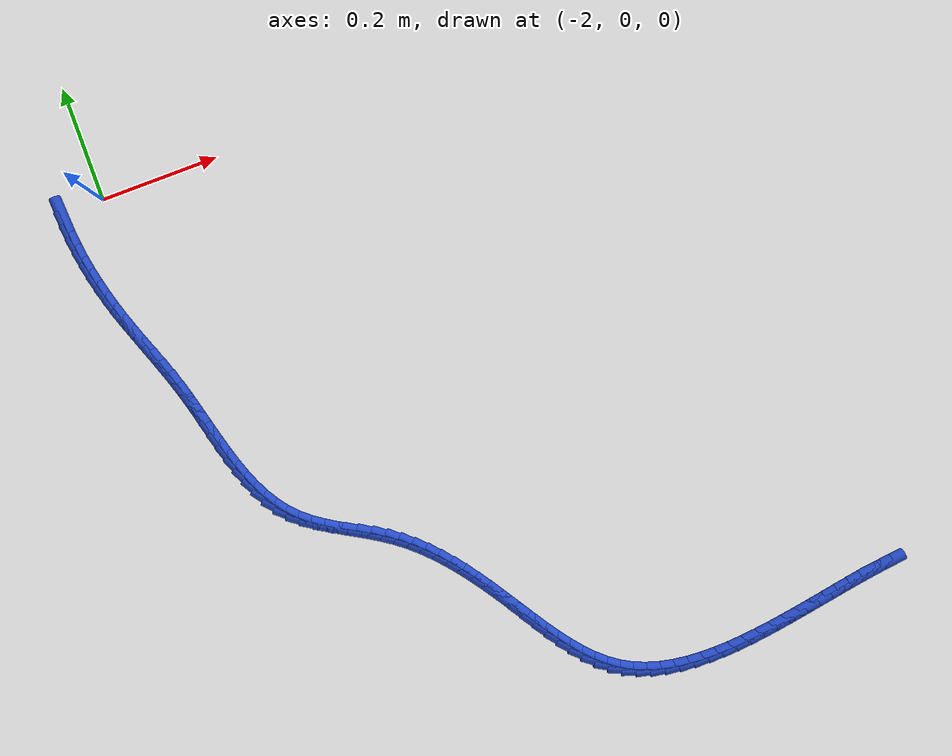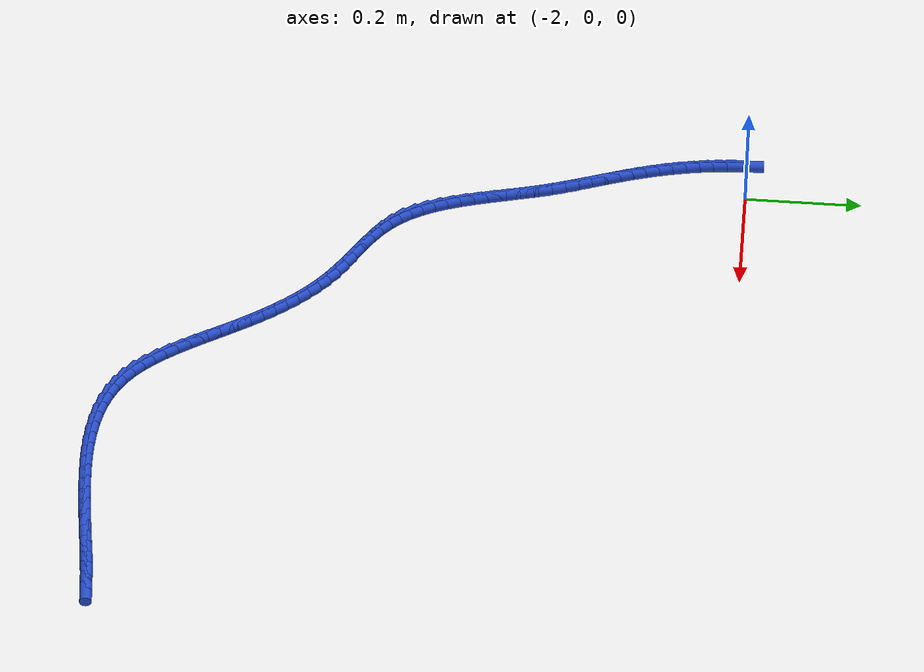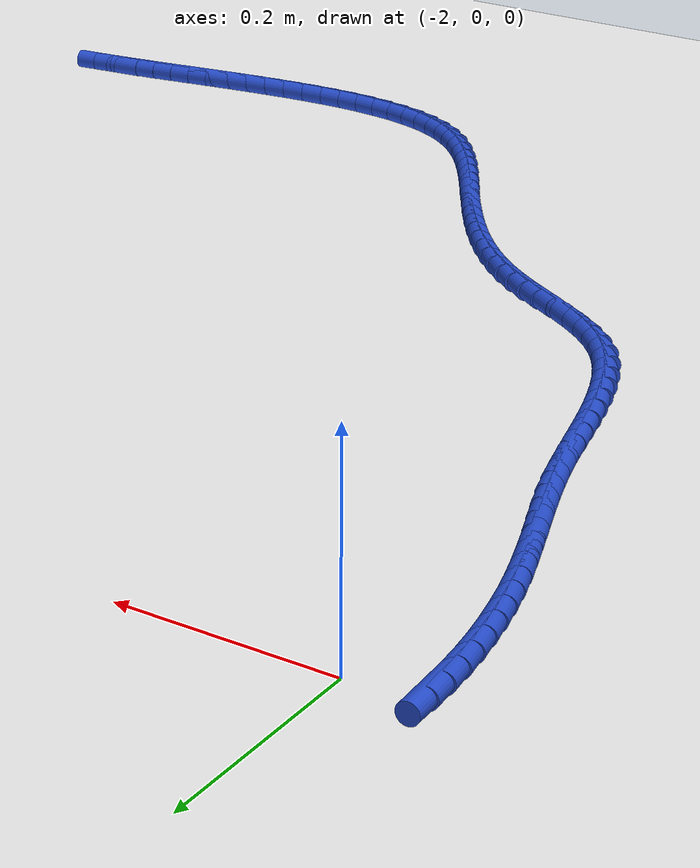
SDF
<sdf version="1.6">
 <world name="default">
  <model name="ground_plane">
   <static>1</static>
   <link name="link">
    <collision name="collision">
     <geometry><plane><normal>0 0 1</normal><size>100 100</size></plane></geometry>
     <surface><friction><ode><mu>100</mu><mu2>50</mu2></ode></friction></surface>
    </collision>
    <visual name="visual">
     <cast_shadows>0</cast_shadows>
     <geometry><plane><normal>0 0 1</normal><size>100 100</size></plane></geometry>
     <material>
      <script><uri>file://media/materials/scripts/gazebo.material</uri><name>Gazebo/WhiteGlow</name></script>
     </material>
    </visual>
   </link>
  </model>
  <model name="line">
   <link name="link_146">
    <pose>-2.069911727514506 -0.011336352684230647 0.01 0 1.57 -1.5201740259745384</pose>
    <collision name="collision">
     <geometry><cylinder><radius>0.01</radius><length>0.08</length></cylinder></geometry>
    </collision>
    <visual name="visual">
     <material>
      <script><name>Gazebo/Blue</name><uri>file://media/materials/scripts/gazebo.material</uri></script>
     </material>
     <geometry><cylinder><radius>0.01</radius><length>0.08</length></cylinder></geometry>
    </visual>
   </link>
   <link name="link_147">
    <pose>-2.0687091675689917 -0.0350715942052536 0.01 0 1.57 -1.476931890890407</pose>
    <collision name="collision">
     <geometry><cylinder><radius>0.01</radius><length>0.08</length></cylinder></geometry>
    </collision>
    <visual name="visual">
     <material>
      <script><name>Gazebo/Blue</name><uri>file://media/materials/scripts/gazebo.material</uri></script>
     </material>
     <geometry><cylinder><radius>0.01</radius><length>0.08</length></cylinder></geometry>
    </visual>
   </link>
   <link name="link_148">
    <pose>-2.066475803037041 -0.058795186758817175 0.01 0 1.57 -1.4367268029445421</pose>
    <collision name="collision">
     <geometry><cylinder><radius>0.01</radius><length>0.08</length></cylinder></geometry>
    </collision>
    <visual name="visual">
     <material>
      <script><name>Gazebo/Blue</name><uri>file://media/materials/scripts/gazebo.material</uri></script>
     </material>
     <geometry><cylinder><radius>0.01</radius><length>0.08</length></cylinder></geometry>
    </visual>
   </link>
   <link name="link_149">
    <pose>-2.0632869603171833 -0.08243750007158315 0.01 0 1.57 -1.399285994150578</pose>
    <collision name="collision">
     <geometry><cylinder><radius>0.01</radius><length>0.08</length></cylinder></geometry>
    </collision>
    <visual name="visual">
     <material>
      <script><name>Gazebo/Blue</name><uri>file://media/materials/scripts/gazebo.material</uri></script>
     </material>
     <geometry><cylinder><radius>0.01</radius><length>0.08</length></cylinder></geometry>
    </visual>
   </link>
   <link name="link_150">
    <pose>-2.0592179658079477 -0.10592890387021327 0.01 0 1.57 -1.3643417691982271</pose>
    <collision name="collision">
     <geometry><cylinder><radius>0.01</radius><length>0.08</length></cylinder></geometry>
    </collision>
    <visual name="visual">
     <material>
      <script><name>Gazebo/Blue</name><uri>file://media/materials/scripts/gazebo.material</uri></script>
     </material>
     <geometry><cylinder><radius>0.01</radius><length>0.08</length></cylinder></geometry>
    </visual>
   </link>
   <link name="link_151">
    <pose>-2.0543441459078635 -0.12919976788136928 0.01 0 1.57 -1.331635716571427</pose>
    <collision name="collision">
     <geometry><cylinder><radius>0.01</radius><length>0.08</length></cylinder></geometry>
    </collision>
    <visual name="visual">
     <material>
      <script><name>Gazebo/Blue</name><uri>file://media/materials/scripts/gazebo.material</uri></script>
     </material>
     <geometry><cylinder><radius>0.01</radius><length>0.08</length></cylinder></geometry>
    </visual>
   </link>
   <link name="link_152">
    <pose>-2.0487408270154592 -0.1521804618317122 0.01 0 1.57 -1.300920537341398</pose>
    <collision name="collision">
     <geometry><cylinder><radius>0.01</radius><length>0.08</length></cylinder></geometry>
    </collision>
    <visual name="visual">
     <material>
      <script><name>Gazebo/Blue</name><uri>file://media/materials/scripts/gazebo.material</uri></script>
     </material>
     <geometry><cylinder><radius>0.01</radius><length>0.08</length></cylinder></geometry>
    </visual>
   </link>
   <link name="link_153">
    <pose>-2.0424833355292633 -0.17480135544790526 0.01 0 1.57 -1.272190181612059</pose>
    <collision name="collision">
     <geometry><cylinder><radius>0.01</radius><length>0.08</length></cylinder></geometry>
    </collision>
    <visual name="visual">
     <material>
      <script><name>Gazebo/Blue</name><uri>file://media/materials/scripts/gazebo.material</uri></script>
     </material>
     <geometry><cylinder><radius>0.01</radius><length>0.08</length></cylinder></geometry>
    </visual>
   </link>
   <link name="link_154">
    <pose>-2.0356500062836993 -0.19700120746071667 0.01 0 1.57 -1.2484676305461881</pose>
    <collision name="collision">
     <geometry><cylinder><radius>0.01</radius><length>0.08</length></cylinder></geometry>
    </collision>
    <visual name="visual">
     <material>
      <script><name>Gazebo/Blue</name><uri>file://media/materials/scripts/gazebo.material</uri></script>
     </material>
     <geometry><cylinder><radius>0.01</radius><length>0.08</length></cylinder></geometry>
    </visual>
   </link>
   <link name="link_155">
    <pose>-2.0283594005211016 -0.2188309476801815 0.01 0 1.57 -1.2323095309053063</pose>
    <collision name="collision">
     <geometry><cylinder><radius>0.01</radius><length>0.08</length></cylinder></geometry>
    </collision>
    <visual name="visual">
     <material>
      <script><name>Gazebo/Blue</name><uri>file://media/materials/scripts/gazebo.material</uri></script>
     </material>
     <geometry><cylinder><radius>0.01</radius><length>0.08</length></cylinder></geometry>
    </visual>
   </link>
   <link name="link_156">
    <pose>-2.020758766001258 -0.24042149808540986 0.01 0 1.57 -1.2240645453291634</pose>
    <collision name="collision">
     <geometry><cylinder><radius>0.01</radius><length>0.08</length></cylinder></geometry>
    </collision>
    <visual name="visual">
     <material>
      <script><name>Gazebo/Blue</name><uri>file://media/materials/scripts/gazebo.material</uri></script>
     </material>
     <geometry><cylinder><radius>0.01</radius><length>0.08</length></cylinder></geometry>
    </visual>
   </link>
   <link name="link_157">
    <pose>-2.0129959679202556 -0.2619055023726623 0.01 0 1.57 -1.2238643599218886</pose>
    <collision name="collision">
     <geometry><cylinder><radius>0.01</radius><length>0.08</length></cylinder></geometry>
    </collision>
    <visual name="visual">
     <material>
      <script><name>Gazebo/Blue</name><uri>file://media/materials/scripts/gazebo.material</uri></script>
     </material>
     <geometry><cylinder><radius>0.01</radius><length>0.08</length></cylinder></geometry>
    </visual>
   </link>
   <link name="link_158">
    <pose>-2.0052188714741845 -0.28341560423819945 0.01 0 1.57 -1.2316800759971496</pose>
    <collision name="collision">
     <geometry><cylinder><radius>0.01</radius><length>0.08</length></cylinder></geometry>
    </collision>
    <visual name="visual">
     <material>
      <script><name>Gazebo/Blue</name><uri>file://media/materials/scripts/gazebo.material</uri></script>
     </material>
     <geometry><cylinder><radius>0.01</radius><length>0.08</length></cylinder></geometry>
    </visual>
   </link>
   <link name="link_159">
    <pose>-1.9975753418591322 -0.30508444737828166 0.01 0 1.57 -1.2473245853386046</pose>
    <collision name="collision">
     <geometry><cylinder><radius>0.01</radius><length>0.08</length></cylinder></geometry>
    </collision>
    <visual name="visual">
     <material>
      <script><name>Gazebo/Blue</name><uri>file://media/materials/scripts/gazebo.material</uri></script>
     </material>
     <geometry><cylinder><radius>0.01</radius><length>0.08</length></cylinder></geometry>
    </visual>
   </link>
   <link name="link_160">
    <pose>-1.9902132442711886 -0.3270446754891697 0.01 0 1.57 -1.2704482333569334</pose>
    <collision name="collision">
     <geometry><cylinder><radius>0.01</radius><length>0.08</length></cylinder></geometry>
    </collision>
    <visual name="visual">
     <material>
      <script><name>Gazebo/Blue</name><uri>file://media/materials/scripts/gazebo.material</uri></script>
     </material>
     <geometry><cylinder><radius>0.01</radius><length>0.08</length></cylinder></geometry>
    </visual>
   </link>
   <link name="link_161">
    <pose>-1.983280443906441 -0.3494289322671239 0.01 0 1.57 -1.2976634187859588</pose>
    <collision name="collision">
     <geometry><cylinder><radius>0.01</radius><length>0.08</length></cylinder></geometry>
    </collision>
    <visual name="visual">
     <material>
      <script><name>Gazebo/Blue</name><uri>file://media/materials/scripts/gazebo.material</uri></script>
     </material>
     <geometry><cylinder><radius>0.01</radius><length>0.08</length></cylinder></geometry>
    </visual>
   </link>
   <link name="link_162">
    <pose>-1.9768678858041315 -0.3723199748034716 0.01 0 1.57 -1.3162664030039972</pose>
    <collision name="collision">
     <geometry><cylinder><radius>0.01</radius><length>0.08</length></cylinder></geometry>
    </collision>
    <visual name="visual">
     <material>
      <script><name>Gazebo/Blue</name><uri>file://media/materials/scripts/gazebo.material</uri></script>
     </material>
     <geometry><cylinder><radius>0.01</radius><length>0.08</length></cylinder></geometry>
    </visual>
   </link>
   <link name="link_163">
    <pose>-1.9708159993043932 -0.39558100039906974 0.01 0 1.57 -1.3233600205519358</pose>
    <collision name="collision">
     <geometry><cylinder><radius>0.01</radius><length>0.08</length></cylinder></geometry>
    </collision>
    <visual name="visual">
     <material>
      <script><name>Gazebo/Blue</name><uri>file://media/materials/scripts/gazebo.material</uri></script>
     </material>
     <geometry><cylinder><radius>0.01</radius><length>0.08</length></cylinder></geometry>
    </visual>
   </link>
   <link name="link_164">
    <pose>-1.964896314885033 -0.4190148212378747 0.01 0 1.57 -1.3192511246419862</pose>
    <collision name="collision">
     <geometry><cylinder><radius>0.01</radius><length>0.08</length></cylinder></geometry>
    </collision>
    <visual name="visual">
     <material>
      <script><name>Gazebo/Blue</name><uri>file://media/materials/scripts/gazebo.material</uri></script>
     </material>
     <geometry><cylinder><radius>0.01</radius><length>0.08</length></cylinder></geometry>
    </visual>
   </link>
   <link name="link_165">
    <pose>-1.9588803609991334 -0.4424242477293127 0.01 0 1.57 -1.3038725372988504</pose>
    <collision name="collision">
     <geometry><cylinder><radius>0.01</radius><length>0.08</length></cylinder></geometry>
    </collision>
    <visual name="visual">
     <material>
      <script><name>Gazebo/Blue</name><uri>file://media/materials/scripts/gazebo.material</uri></script>
     </material>
     <geometry><cylinder><radius>0.01</radius><length>0.08</length></cylinder></geometry>
    </visual>
   </link>
   <link name="link_166">
    <pose>-1.9525396660997807 -0.4656120902828102 0.01 0 1.57 -1.2767955051747402</pose>
    <collision name="collision">
     <geometry><cylinder><radius>0.01</radius><length>0.08</length></cylinder></geometry>
    </collision>
    <visual name="visual">
     <material>
      <script><name>Gazebo/Blue</name><uri>file://media/materials/scripts/gazebo.material</uri></script>
     </material>
     <geometry><cylinder><radius>0.01</radius><length>0.08</length></cylinder></geometry>
    </visual>
   </link>
   <link name="link_167">
    <pose>-1.9456457586400568 -0.4883811593077933 0.01 0 1.57 -1.237261467795922</pose>
    <collision name="collision">
     <geometry><cylinder><radius>0.01</radius><length>0.08</length></cylinder></geometry>
    </collision>
    <visual name="visual">
     <material>
      <script><name>Gazebo/Blue</name><uri>file://media/materials/scripts/gazebo.material</uri></script>
     </material>
     <geometry><cylinder><radius>0.01</radius><length>0.08</length></cylinder></geometry>
    </visual>
   </link>
   <link name="link_168">
    <pose>-1.9379701670730478 -0.5105342652136884 0.01 0 1.57 -1.1842545421378392</pose>
    <collision name="collision">
     <geometry><cylinder><radius>0.01</radius><length>0.08</length></cylinder></geometry>
    </collision>
    <visual name="visual">
     <material>
      <script><name>Gazebo/Blue</name><uri>file://media/materials/scripts/gazebo.material</uri></script>
     </material>
     <geometry><cylinder><radius>0.01</radius><length>0.08</length></cylinder></geometry>
    </visual>
   </link>
   <link name="link_169">
    <pose>-1.929284419851837 -0.531874218409921 0.01 0 1.57 -1.1166547158455005</pose>
    <collision name="collision">
     <geometry><cylinder><radius>0.01</radius><length>0.08</length></cylinder></geometry>
    </collision>
    <visual name="visual">
     <material>
      <script><name>Gazebo/Blue</name><uri>file://media/materials/scripts/gazebo.material</uri></script>
     </material>
     <geometry><cylinder><radius>0.01</radius><length>0.08</length></cylinder></geometry>
    </visual>
   </link>
   <link name="link_170">
    <pose>-1.919360045429508 -0.5522038293059188 0.01 0 1.57 -1.0335271936343151</pose>
    <collision name="collision">
     <geometry><cylinder><radius>0.01</radius><length>0.08</length></cylinder></geometry>
    </collision>
    <visual name="visual">
     <material>
      <script><name>Gazebo/Blue</name><uri>file://media/materials/scripts/gazebo.material</uri></script>
     </material>
     <geometry><cylinder><radius>0.01</radius><length>0.08</length></cylinder></geometry>
    </visual>
   </link>
   <link name="link_171">
    <pose>-1.9079685722591455 -0.5713259083111074 0.01 0 1.57 -0.9345945945693137</pose>
    <collision name="collision">
     <geometry><cylinder><radius>0.01</radius><length>0.08</length></cylinder></geometry>
    </collision>
    <visual name="visual">
     <material>
      <script><name>Gazebo/Blue</name><uri>file://media/materials/scripts/gazebo.material</uri></script>
     </material>
     <geometry><cylinder><radius>0.01</radius><length>0.08</length></cylinder></geometry>
    </visual>
   </link>
   <link name="link_172">
    <pose>-1.8948815287938336 -0.5890432658349131 0.01 0 1.57 -0.8209439447834606</pose>
    <collision name="collision">
     <geometry><cylinder><radius>0.01</radius><length>0.08</length></cylinder></geometry>
    </collision>
    <visual name="visual">
     <material>
      <script><name>Gazebo/Blue</name><uri>file://media/materials/scripts/gazebo.material</uri></script>
     </material>
     <geometry><cylinder><radius>0.01</radius><length>0.08</length></cylinder></geometry>
    </visual>
   </link>
   <link name="link_173">
    <pose>-1.8798717853639986 -0.6051598864151749 0.01 0 1.57 -0.707680234344595</pose>
    <collision name="collision">
     <geometry><cylinder><radius>0.01</radius><length>0.08</length></cylinder></geometry>
    </collision>
    <visual name="visual">
     <material>
      <script><name>Gazebo/Blue</name><uri>file://media/materials/scripts/gazebo.material</uri></script>
     </material>
     <geometry><cylinder><radius>0.01</radius><length>0.08</length></cylinder></geometry>
    </visual>
   </link>
   <link name="link_174">
    <pose>-1.8629203610140335 -0.6196618825021735 0.01 0 1.57 -0.6220650474371336</pose>
    <collision name="collision">
     <geometry><cylinder><radius>0.01</radius><length>0.08</length></cylinder></geometry>
    </collision>
    <visual name="visual">
     <material>
      <script><name>Gazebo/Blue</name><uri>file://media/materials/scripts/gazebo.material</uri></script>
     </material>
     <geometry><cylinder><radius>0.01</radius><length>0.08</length></cylinder></geometry>
    </visual>
   </link>
   <link name="link_175">
    <pose>-1.8444398463715064 -0.6329129870945704 0.01 0 1.57 -0.5657876214986116</pose>
    <collision name="collision">
     <geometry><cylinder><radius>0.01</radius><length>0.08</length></cylinder></geometry>
    </collision>
    <visual name="visual">
     <material>
      <script><name>Gazebo/Blue</name><uri>file://media/materials/scripts/gazebo.material</uri></script>
     </material>
     <geometry><cylinder><radius>0.01</radius><length>0.08</length></cylinder></geometry>
    </visual>
   </link>
   <link name="link_176">
    <pose>-1.824896454641261 -0.645323852376224 0.01 0 1.57 -0.5366595604173877</pose>
    <collision name="collision">
     <geometry><cylinder><radius>0.01</radius><length>0.08</length></cylinder></geometry>
    </collision>
    <visual name="visual">
     <material>
      <script><name>Gazebo/Blue</name><uri>file://media/materials/scripts/gazebo.material</uri></script>
     </material>
     <geometry><cylinder><radius>0.01</radius><length>0.08</length></cylinder></geometry>
    </visual>
   </link>
   <link name="link_177">
    <pose>-1.804756399028141 -0.6573051305309925 0.01 0 1.57 -0.5331345372468986</pose>
    <collision name="collision">
     <geometry><cylinder><radius>0.01</radius><length>0.08</length></cylinder></geometry>
    </collision>
    <visual name="visual">
     <material>
      <script><name>Gazebo/Blue</name><uri>file://media/materials/scripts/gazebo.material</uri></script>
     </material>
     <geometry><cylinder><radius>0.01</radius><length>0.08</length></cylinder></geometry>
    </visual>
   </link>
   <link name="link_178">
    <pose>-1.7844858927369913 -0.6692674737427348 0.01 0 1.57 -0.5547971106336659</pose>
    <collision name="collision">
     <geometry><cylinder><radius>0.01</radius><length>0.08</length></cylinder></geometry>
    </collision>
    <visual name="visual">
     <material>
      <script><name>Gazebo/Blue</name><uri>file://media/materials/scripts/gazebo.material</uri></script>
     </material>
     <geometry><cylinder><radius>0.01</radius><length>0.08</length></cylinder></geometry>
    </visual>
   </link>
   <link name="link_179">
    <pose>-1.7645511489726546 -0.6816215341953082 0.01 0 1.57 -0.6023237236051242</pose>
    <collision name="collision">
     <geometry><cylinder><radius>0.01</radius><length>0.08</length></cylinder></geometry>
    </collision>
    <visual name="visual">
     <material>
      <script><name>Gazebo/Blue</name><uri>file://media/materials/scripts/gazebo.material</uri></script>
     </material>
     <geometry><cylinder><radius>0.01</radius><length>0.08</length></cylinder></geometry>
    </visual>
   </link>
   <link name="link_180">
    <pose>-1.7454173271505067 -0.6947770617513754 0.01 0 1.57 -0.667540088386535</pose>
    <collision name="collision">
     <geometry><cylinder><radius>0.01</radius><length>0.08</length></cylinder></geometry>
    </collision>
    <visual name="visual">
     <material>
      <script><name>Gazebo/Blue</name><uri>file://media/materials/scripts/gazebo.material</uri></script>
     </material>
     <geometry><cylinder><radius>0.01</radius><length>0.08</length></cylinder></geometry>
    </visual>
   </link>
   <link name="link_181">
    <pose>-1.727377892665627 -0.7089967909936489 0.01 0 1.57 -0.7304517857018721</pose>
    <collision name="collision">
     <geometry><cylinder><radius>0.01</radius><length>0.08</length></cylinder></geometry>
    </collision>
    <visual name="visual">
     <material>
      <script><name>Gazebo/Blue</name><uri>file://media/materials/scripts/gazebo.material</uri></script>
     </material>
     <geometry><cylinder><radius>0.01</radius><length>0.08</length></cylinder></geometry>
    </visual>
   </link>
   <link name="link_182">
    <pose>-1.7103659675176215 -0.7242349076976523 0.01 0 1.57 -0.7877251301197262</pose>
    <collision name="collision">
     <geometry><cylinder><radius>0.01</radius><length>0.08</length></cylinder></geometry>
    </collision>
    <visual name="visual">
     <material>
      <script><name>Gazebo/Blue</name><uri>file://media/materials/scripts/gazebo.material</uri></script>
     </material>
     <geometry><cylinder><radius>0.01</radius><length>0.08</length></cylinder></geometry>
    </visual>
   </link>
   <link name="link_183">
    <pose>-1.6942692554495473 -0.7404067076549149 0.01 0 1.57 -0.8387902454336946</pose>
    <collision name="collision">
     <geometry><cylinder><radius>0.01</radius><length>0.08</length></cylinder></geometry>
    </collision>
    <visual name="visual">
     <material>
      <script><name>Gazebo/Blue</name><uri>file://media/materials/scripts/gazebo.material</uri></script>
     </material>
     <geometry><cylinder><radius>0.01</radius><length>0.08</length></cylinder></geometry>
    </visual>
   </link>
   <link name="link_184">
    <pose>-1.6789754602044635 -0.757427486656965 0.01 0 1.57 -0.8833257619584388</pose>
    <collision name="collision">
     <geometry><cylinder><radius>0.01</radius><length>0.08</length></cylinder></geometry>
    </collision>
    <visual name="visual">
     <material>
      <script><name>Gazebo/Blue</name><uri>file://media/materials/scripts/gazebo.material</uri></script>
     </material>
     <geometry><cylinder><radius>0.01</radius><length>0.08</length></cylinder></geometry>
    </visual>
   </link>
   <link name="link_185">
    <pose>-1.6643722855254255 -0.7752125404953334 0.01 0 1.57 -0.921209642078744</pose>
    <collision name="collision">
     <geometry><cylinder><radius>0.01</radius><length>0.08</length></cylinder></geometry>
    </collision>
    <visual name="visual">
     <material>
      <script><name>Gazebo/Blue</name><uri>file://media/materials/scripts/gazebo.material</uri></script>
     </material>
     <geometry><cylinder><radius>0.01</radius><length>0.08</length></cylinder></geometry>
    </visual>
   </link>
   <link name="link_186">
    <pose>-1.6503474351554919 -0.793677164961548 0.01 0 1.57 -0.9524637270557765</pose>
    <collision name="collision">
     <geometry><cylinder><radius>0.01</radius><length>0.08</length></cylinder></geometry>
    </collision>
    <visual name="visual">
     <material>
      <script><name>Gazebo/Blue</name><uri>file://media/materials/scripts/gazebo.material</uri></script>
     </material>
     <geometry><cylinder><radius>0.01</radius><length>0.08</length></cylinder></geometry>
    </visual>
   </link>
   <link name="link_187">
    <pose>-1.6367886128377205 -0.8127366558471385 0.01 0 1.57 -0.9772020265724723</pose>
    <collision name="collision">
     <geometry><cylinder><radius>0.01</radius><length>0.08</length></cylinder></geometry>
    </collision>
    <visual name="visual">
     <material>
      <script><name>Gazebo/Blue</name><uri>file://media/materials/scripts/gazebo.material</uri></script>
     </material>
     <geometry><cylinder><radius>0.01</radius><length>0.08</length></cylinder></geometry>
    </visual>
   </link>
   <link name="link_188">
    <pose>-1.623583522315168 -0.8323063089436337 0.01 0 1.57 -0.9955880829759364</pose>
    <collision name="collision">
     <geometry><cylinder><radius>0.01</radius><length>0.08</length></cylinder></geometry>
    </collision>
    <visual name="visual">
     <material>
      <script><name>Gazebo/Blue</name><uri>file://media/materials/scripts/gazebo.material</uri></script>
     </material>
     <geometry><cylinder><radius>0.01</radius><length>0.08</length></cylinder></geometry>
    </visual>
   </link>
   <link name="link_189">
    <pose>-1.610619867330893 -0.8523014200425629 0.01 0 1.57 -1.0073008460488415</pose>
    <collision name="collision">
     <geometry><cylinder><radius>0.01</radius><length>0.08</length></cylinder></geometry>
    </collision>
    <visual name="visual">
     <material>
      <script><name>Gazebo/Blue</name><uri>file://media/materials/scripts/gazebo.material</uri></script>
     </material>
     <geometry><cylinder><radius>0.01</radius><length>0.08</length></cylinder></geometry>
    </visual>
   </link>
   <link name="link_190">
    <pose>-1.5977812229901223 -0.8726212066295252 0.01 0 1.57 -1.0086025283911992</pose>
    <collision name="collision">
     <geometry><cylinder><radius>0.01</radius><length>0.08</length></cylinder></geometry>
    </collision>
    <visual name="visual">
     <material>
      <script><name>Gazebo/Blue</name><uri>file://media/materials/scripts/gazebo.material</uri></script>
     </material>
     <geometry><cylinder><radius>0.01</radius><length>0.08</length></cylinder></geometry>
    </visual>
   </link>
   <link name="link_191">
    <pose>-1.5849185415689717 -0.8930378419086159 0.01 0 1.57 -0.9977375469967392</pose>
    <collision name="collision">
     <geometry><cylinder><radius>0.01</radius><length>0.08</length></cylinder></geometry>
    </collision>
    <visual name="visual">
     <material>
      <script><name>Gazebo/Blue</name><uri>file://media/materials/scripts/gazebo.material</uri></script>
     </material>
     <geometry><cylinder><radius>0.01</radius><length>0.08</length></cylinder></geometry>
    </visual>
   </link>
   <link name="link_192">
    <pose>-1.571867285366082 -0.9132631758957727 0.01 0 1.57 -0.9743989198213218</pose>
    <collision name="collision">
     <geometry><cylinder><radius>0.01</radius><length>0.08</length></cylinder></geometry>
    </collision>
    <visual name="visual">
     <material>
      <script><name>Gazebo/Blue</name><uri>file://media/materials/scripts/gazebo.material</uri></script>
     </material>
     <geometry><cylinder><radius>0.01</radius><length>0.08</length></cylinder></geometry>
    </visual>
   </link>
   <link name="link_193">
    <pose>-1.5584628229516055 -0.9330086935966311 0.01 0 1.57 -0.9378523122335517</pose>
    <collision name="collision">
     <geometry><cylinder><radius>0.01</radius><length>0.08</length></cylinder></geometry>
    </collision>
    <visual name="visual">
     <material>
      <script><name>Gazebo/Blue</name><uri>file://media/materials/scripts/gazebo.material</uri></script>
     </material>
     <geometry><cylinder><radius>0.01</radius><length>0.08</length></cylinder></geometry>
    </visual>
   </link>
   <link name="link_194">
    <pose>-1.544540522895693 -0.9519858800168263 0.01 0 1.57 -0.8869860615170951</pose>
    <collision name="collision">
     <geometry><cylinder><radius>0.01</radius><length>0.08</length></cylinder></geometry>
    </collision>
    <visual name="visual">
     <material>
      <script><name>Gazebo/Blue</name><uri>file://media/materials/scripts/gazebo.material</uri></script>
     </material>
     <geometry><cylinder><radius>0.01</radius><length>0.08</length></cylinder></geometry>
    </visual>
   </link>
   <link name="link_195">
    <pose>-1.5299357537684954 -0.9699062201619928 0.01 0 1.57 -0.8204515407786281</pose>
    <collision name="collision">
     <geometry><cylinder><radius>0.01</radius><length>0.08</length></cylinder></geometry>
    </collision>
    <visual name="visual">
     <material>
      <script><name>Gazebo/Blue</name><uri>file://media/materials/scripts/gazebo.material</uri></script>
     </material>
     <geometry><cylinder><radius>0.01</radius><length>0.08</length></cylinder></geometry>
    </visual>
   </link>
   <link name="link_196">
    <pose>-1.5144838841401633 -0.9864811990377659 0.01 0 1.57 -0.7369561262345358</pose>
    <collision name="collision">
     <geometry><cylinder><radius>0.01</radius><length>0.08</length></cylinder></geometry>
    </collision>
    <visual name="visual">
     <material>
      <script><name>Gazebo/Blue</name><uri>file://media/materials/scripts/gazebo.material</uri></script>
     </material>
     <geometry><cylinder><radius>0.01</radius><length>0.08</length></cylinder></geometry>
    </visual>
   </link>
   <link name="link_197">
    <pose>-1.4980202825808488 -1.0014223016497807 0.01 0 1.57 -0.6357920822563115</pose>
    <collision name="collision">
     <geometry><cylinder><radius>0.01</radius><length>0.08</length></cylinder></geometry>
    </collision>
    <visual name="visual">
     <material>
      <script><name>Gazebo/Blue</name><uri>file://media/materials/scripts/gazebo.material</uri></script>
     </material>
     <geometry><cylinder><radius>0.01</radius><length>0.08</length></cylinder></geometry>
    </visual>
   </link>
   <link name="link_198">
    <pose>-1.4803803176607027 -1.014441013003672 0.01 0 1.57 -0.5198716639415296</pose>
    <collision name="collision">
     <geometry><cylinder><radius>0.01</radius><length>0.08</length></cylinder></geometry>
    </collision>
    <visual name="visual">
     <material>
      <script><name>Gazebo/Blue</name><uri>file://media/materials/scripts/gazebo.material</uri></script>
     </material>
     <geometry><cylinder><radius>0.01</radius><length>0.08</length></cylinder></geometry>
    </visual>
   </link>
   <link name="link_199">
    <pose>-1.4614277093774786 -1.025289323649865 0.01 0 1.57 -0.40770406696930234</pose>
    <collision name="collision">
     <geometry><cylinder><radius>0.01</radius><length>0.08</length></cylinder></geometry>
    </collision>
    <visual name="visual">
     <material>
      <script><name>Gazebo/Blue</name><uri>file://media/materials/scripts/gazebo.material</uri></script>
     </material>
     <geometry><cylinder><radius>0.01</radius><length>0.08</length></cylinder></geometry>
    </visual>
   </link>
   <link name="link_200">
    <pose>-1.441231277378855 -1.0340122489970995 0.01 0 1.57 -0.3080593780471928</pose>
    <collision name="collision">
     <geometry><cylinder><radius>0.01</radius><length>0.08</length></cylinder></geometry>
    </collision>
    <visual name="visual">
     <material>
      <script><name>Gazebo/Blue</name><uri>file://media/materials/scripts/gazebo.material</uri></script>
     </material>
     <geometry><cylinder><radius>0.01</radius><length>0.08</length></cylinder></geometry>
    </visual>
   </link>
   <link name="link_201">
    <pose>-1.4199500603401296 -1.040783699933924 0.01 0 1.57 -0.2212272583610019</pose>
    <collision name="collision">
     <geometry><cylinder><radius>0.01</radius><length>0.08</length></cylinder></geometry>
    </collision>
    <visual name="visual">
     <material>
      <script><name>Gazebo/Blue</name><uri>file://media/materials/scripts/gazebo.material</uri></script>
     </material>
     <geometry><cylinder><radius>0.01</radius><length>0.08</length></cylinder></geometry>
    </visual>
   </link>
   <link name="link_202">
    <pose>-1.3977434871658745 -1.0457781448675292 0.01 0 1.57 -0.14659162259366085</pose>
    <collision name="collision">
     <geometry><cylinder><radius>0.01</radius><length>0.08</length></cylinder></geometry>
    </collision>
    <visual name="visual">
     <material>
      <script><name>Gazebo/Blue</name><uri>file://media/materials/scripts/gazebo.material</uri></script>
     </material>
     <geometry><cylinder><radius>0.01</radius><length>0.08</length></cylinder></geometry>
    </visual>
   </link>
   <link name="link_203">
    <pose>-1.3747709867606643 -1.0491700522051057 0.01 0 1.57 -0.08309581100497823</pose>
    <collision name="collision">
     <geometry><cylinder><radius>0.01</radius><length>0.08</length></cylinder></geometry>
    </collision>
    <visual name="visual">
     <material>
      <script><name>Gazebo/Blue</name><uri>file://media/materials/scripts/gazebo.material</uri></script>
     </material>
     <geometry><cylinder><radius>0.01</radius><length>0.08</length></cylinder></geometry>
    </visual>
   </link>
   <link name="link_204">
    <pose>-1.3511919880290728 -1.0511338903538454 0.01 0 1.57 -0.02955250889993843</pose>
    <collision name="collision">
     <geometry><cylinder><radius>0.01</radius><length>0.08</length></cylinder></geometry>
    </collision>
    <visual name="visual">
     <material>
      <script><name>Gazebo/Blue</name><uri>file://media/materials/scripts/gazebo.material</uri></script>
     </material>
     <geometry><cylinder><radius>0.01</radius><length>0.08</length></cylinder></geometry>
    </visual>
   </link>
   <link name="link_205">
    <pose>-1.3271659198756736 -1.0518441277209387 0.01 0 1.57 0.015171141098482105</pose>
    <collision name="collision">
     <geometry><cylinder><radius>0.01</radius><length>0.08</length></cylinder></geometry>
    </collision>
    <visual name="visual">
     <material>
      <script><name>Gazebo/Blue</name><uri>file://media/materials/scripts/gazebo.material</uri></script>
     </material>
     <geometry><cylinder><radius>0.01</radius><length>0.08</length></cylinder></geometry>
    </visual>
   </link>
   <link name="link_206">
    <pose>-1.3028522112050402 -1.0514752327135768 0.01 0 1.57 0.05205844177348676</pose>
    <collision name="collision">
     <geometry><cylinder><radius>0.01</radius><length>0.08</length></cylinder></geometry>
    </collision>
    <visual name="visual">
     <material>
      <script><name>Gazebo/Blue</name><uri>file://media/materials/scripts/gazebo.material</uri></script>
     </material>
     <geometry><cylinder><radius>0.01</radius><length>0.08</length></cylinder></geometry>
    </visual>
   </link>
   <link name="link_207">
    <pose>-1.278410290921747 -1.0502016737389503 0.01 0 1.57 0.08190146085121554</pose>
    <collision name="collision">
     <geometry><cylinder><radius>0.01</radius><length>0.08</length></cylinder></geometry>
    </collision>
    <visual name="visual">
     <material>
      <script><name>Gazebo/Blue</name><uri>file://media/materials/scripts/gazebo.material</uri></script>
     </material>
     <geometry><cylinder><radius>0.01</radius><length>0.08</length></cylinder></geometry>
    </visual>
   </link>
   <link name="link_208">
    <pose>-1.2539995879303665 -1.0481979192042503 0.01 0 1.57 0.10528536006348281</pose>
    <collision name="collision">
     <geometry><cylinder><radius>0.01</radius><length>0.08</length></cylinder></geometry>
    </collision>
    <visual name="visual">
     <material>
      <script><name>Gazebo/Blue</name><uri>file://media/materials/scripts/gazebo.material</uri></script>
     </material>
     <geometry><cylinder><radius>0.01</radius><length>0.08</length></cylinder></geometry>
    </visual>
   </link>
   <link name="link_209">
    <pose>-1.2297795311354733 -1.045638437516668 0.01 0 1.57 0.12262791397732072</pose>
    <collision name="collision">
     <geometry><cylinder><radius>0.01</radius><length>0.08</length></cylinder></geometry>
    </collision>
    <visual name="visual">
     <material>
      <script><name>Gazebo/Blue</name><uri>file://media/materials/scripts/gazebo.material</uri></script>
     </material>
     <geometry><cylinder><radius>0.01</radius><length>0.08</length></cylinder></geometry>
    </visual>
   </link>
   <link name="link_210">
    <pose>-1.205905682202265 -1.0426960737146735 0.01 0 1.57 0.13530113202657132</pose>
    <collision name="collision">
     <geometry><cylinder><radius>0.01</radius><length>0.08</length></cylinder></geometry>
    </collision>
    <visual name="visual">
     <material>
      <script><name>Gazebo/Blue</name><uri>file://media/materials/scripts/gazebo.material</uri></script>
     </material>
     <geometry><cylinder><radius>0.01</radius><length>0.08</length></cylinder></geometry>
    </visual>
   </link>
   <link name="link_211">
    <pose>-1.182430279274951 -1.039500300250816 0.01 0 1.57 0.14450022878278362</pose>
    <collision name="collision">
     <geometry><cylinder><radius>0.01</radius><length>0.08</length></cylinder></geometry>
    </collision>
    <visual name="visual">
     <material>
      <script><name>Gazebo/Blue</name><uri>file://media/materials/scripts/gazebo.material</uri></script>
     </material>
     <geometry><cylinder><radius>0.01</radius><length>0.08</length></cylinder></geometry>
    </visual>
   </link>
   <link name="link_212">
    <pose>-1.1592935561653328 -1.0361335730079 0.01 0 1.57 0.1500902833701425</pose>
    <collision name="collision">
     <geometry><cylinder><radius>0.01</radius><length>0.08</length></cylinder></geometry>
    </collision>
    <visual name="visual">
     <material>
      <script><name>Gazebo/Blue</name><uri>file://media/materials/scripts/gazebo.material</uri></script>
     </material>
     <geometry><cylinder><radius>0.01</radius><length>0.08</length></cylinder></geometry>
    </visual>
   </link>
   <link name="link_213">
    <pose>-1.1364301397407577 -1.032675994216069 0.01 0 1.57 0.1519105843078216</pose>
    <collision name="collision">
     <geometry><cylinder><radius>0.01</radius><length>0.08</length></cylinder></geometry>
    </collision>
    <visual name="visual">
     <material>
      <script><name>Gazebo/Blue</name><uri>file://media/materials/scripts/gazebo.material</uri></script>
     </material>
     <geometry><cylinder><radius>0.01</radius><length>0.08</length></cylinder></geometry>
    </visual>
   </link>
   <link name="link_214">
    <pose>-1.1137746568685731 -1.029207666105467 0.01 0 1.57 0.14984712286885885</pose>
    <collision name="collision">
     <geometry><cylinder><radius>0.01</radius><length>0.08</length></cylinder></geometry>
    </collision>
    <visual name="visual">
     <material>
      <script><name>Gazebo/Blue</name><uri>file://media/materials/scripts/gazebo.material</uri></script>
     </material>
     <geometry><cylinder><radius>0.01</radius><length>0.08</length></cylinder></geometry>
    </visual>
   </link>
   <link name="link_215">
    <pose>-1.091261734416126 -1.0258086909062374 0.01 0 1.57 0.14383657735004746</pose>
    <collision name="collision">
     <geometry><cylinder><radius>0.01</radius><length>0.08</length></cylinder></geometry>
    </collision>
    <visual name="visual">
     <material>
      <script><name>Gazebo/Blue</name><uri>file://media/materials/scripts/gazebo.material</uri></script>
     </material>
     <geometry><cylinder><radius>0.01</radius><length>0.08</length></cylinder></geometry>
    </visual>
   </link>
   <link name="link_216">
    <pose>-1.068825999250765 -1.0225591708485242 0.01 0 1.57 0.13387045656134966</pose>
    <collision name="collision">
     <geometry><cylinder><radius>0.01</radius><length>0.08</length></cylinder></geometry>
    </collision>
    <visual name="visual">
     <material>
      <script><name>Gazebo/Blue</name><uri>file://media/materials/scripts/gazebo.material</uri></script>
     </material>
     <geometry><cylinder><radius>0.01</radius><length>0.08</length></cylinder></geometry>
    </visual>
   </link>
   <link name="link_217">
    <pose>-1.046402078239835 -1.0195392081624703 0.01 0 1.57 0.12000438328459646</pose>
    <collision name="collision">
     <geometry><cylinder><radius>0.01</radius><length>0.08</length></cylinder></geometry>
    </collision>
    <visual name="visual">
     <material>
      <script><name>Gazebo/Blue</name><uri>file://media/materials/scripts/gazebo.material</uri></script>
     </material>
     <geometry><cylinder><radius>0.01</radius><length>0.08</length></cylinder></geometry>
    </visual>
   </link>
   <link name="link_218">
    <pose>-1.0239246778687119 -1.0168287981661017 0.01 0 1.57 0.10351984449275767</pose>
    <collision name="collision">
     <geometry><cylinder><radius>0.01</radius><length>0.08</length></cylinder></geometry>
    </collision>
    <visual name="visual">
     <material>
      <script><name>Gazebo/Blue</name><uri>file://media/materials/scripts/gazebo.material</uri></script>
     </material>
     <geometry><cylinder><radius>0.01</radius><length>0.08</length></cylinder></geometry>
    </visual>
   </link>
  </model>
 </world>
</sdf>
